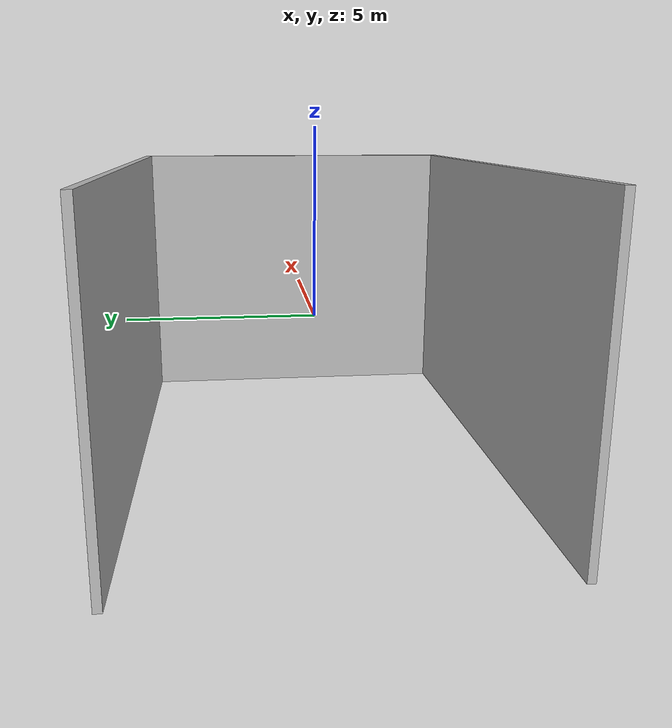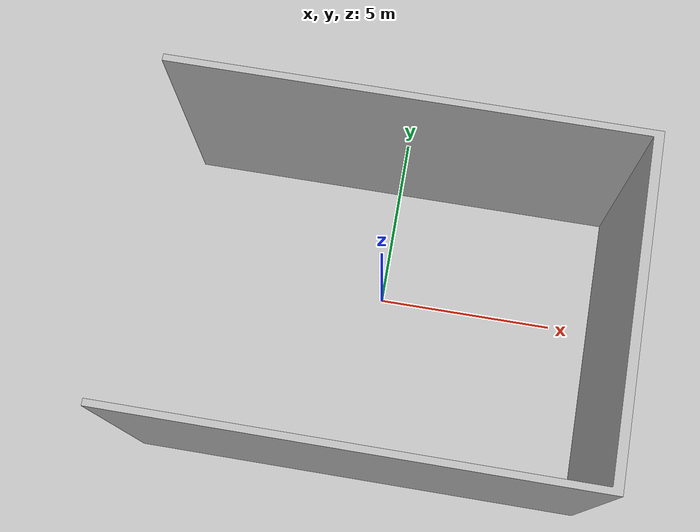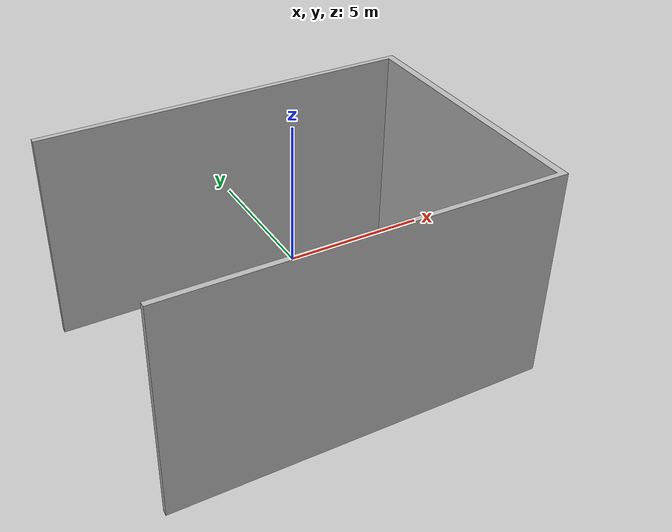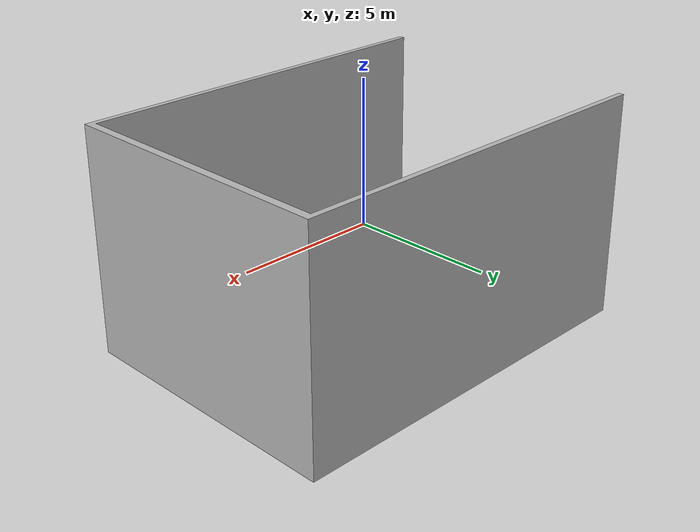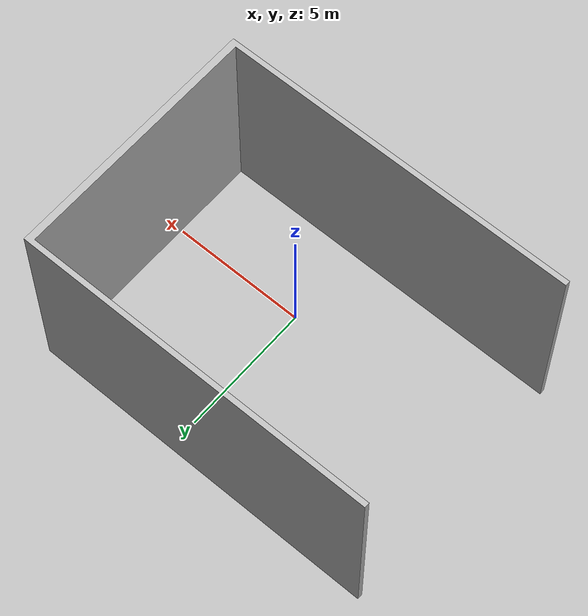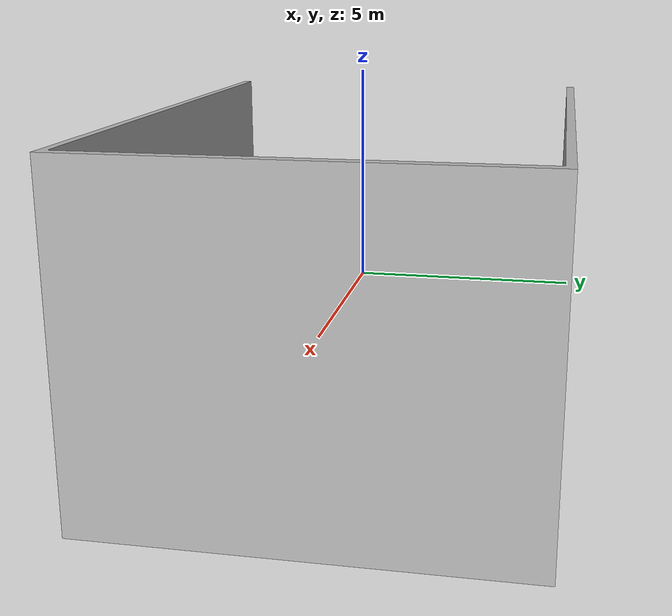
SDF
<?xml version="1.0" ?>
<sdf version="1.6">
  <model name="walls">
    <static>true</static>
    <link name="link">
      <visual name="visual">
        <geometry>
          <mesh>
            <uri>model://walls/walls.dae</uri>
          </mesh>
        </geometry>
      </visual>
    </link>
  </model>
</sdf>
